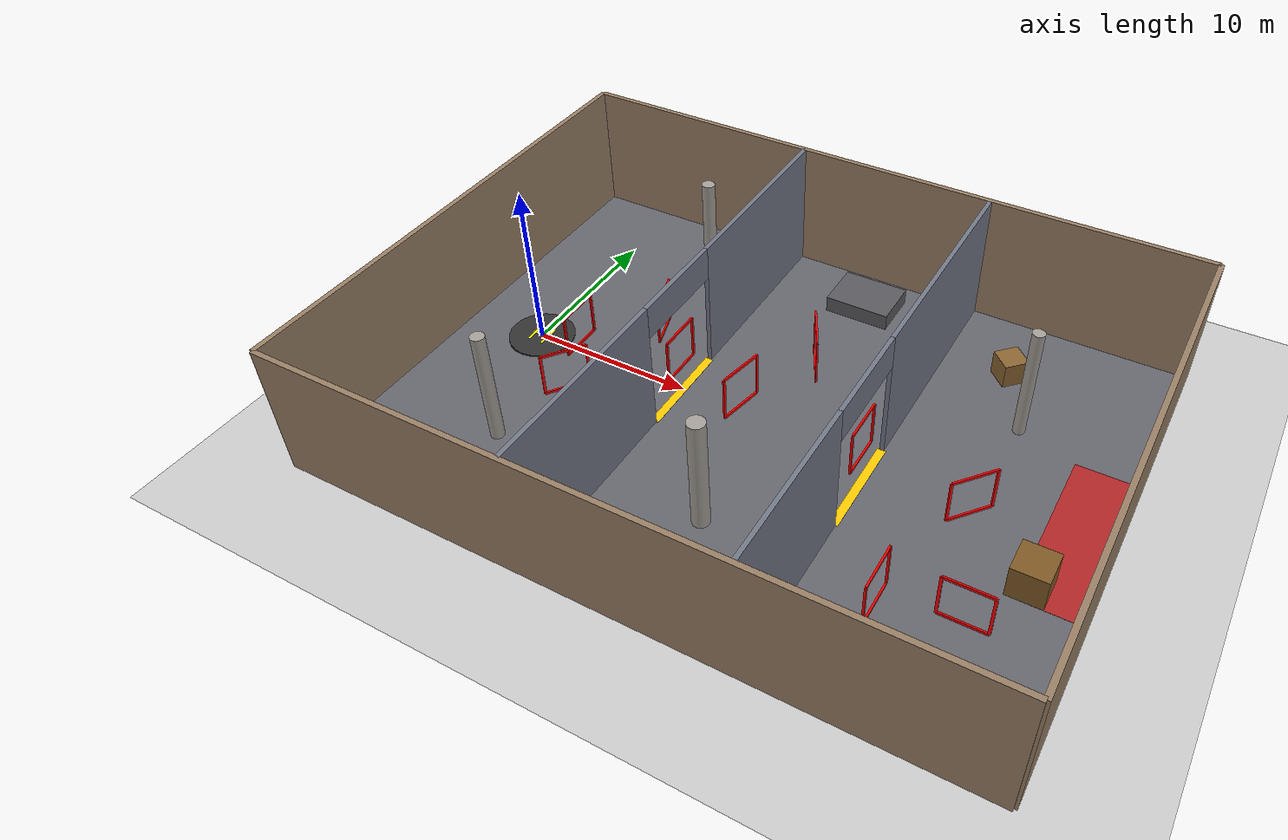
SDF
<sdf version="1.6">
 <world name="aerial_nav_world">
  <physics name="4ms" type="ignored">
   <max_step_size>0.004</max_step_size>
   <real_time_factor>1.0</real_time_factor>
   <real_time_update_rate>250</real_time_update_rate>
  </physics>
  <plugin filename="gz-sim-physics-system" name="gz::sim::systems::Physics"/>
  <plugin filename="gz-sim-scene-broadcaster-system" name="gz::sim::systems::SceneBroadcaster"/>
  <plugin filename="gz-sim-user-commands-system" name="gz::sim::systems::UserCommands"/>
  <plugin filename="gz-sim-sensors-system" name="gz::sim::systems::Sensors">
   <render_engine>ogre</render_engine>
  </plugin>
  <plugin filename="gz-sim-imu-system" name="gz::sim::systems::Imu"/>
  <plugin filename="gz-sim-contact-system" name="gz::sim::systems::Contact"/>
  <light type="directional" name="sun">
   <pose>0 0 20 0 0 0</pose>
   <diffuse>0.8 0.8 0.8 1</diffuse>
   <specular>0.2 0.2 0.2 1</specular>
   <attenuation>
    <range>1000</range>
    <constant>0.9</constant>
    <linear>0.01</linear>
    <quadratic>0.001</quadratic>
   </attenuation>
   <direction>-0.5 0.1 -0.9</direction>
  </light>
  <light name="fill_light" type="directional">
   <cast_shadows>false</cast_shadows>
   <pose>0 0 20 0 0 0</pose>
   <diffuse>0.6 0.6 0.6 1</diffuse>
   <specular>0.1 0.1 0.1 1</specular>
   <direction>0.3 0.4 -1.0</direction>
  </light>
  <light name="interior_light_1" type="point">
   <pose>10 5 7 0 0 0</pose>
   <diffuse>0.9 0.8 0.6 1</diffuse>
   <specular>0.1 0.1 0.1 1</specular>
   <attenuation>
    <range>30</range>
    <constant>0.3</constant>
    <linear>0.01</linear>
    <quadratic>0.001</quadratic>
   </attenuation>
  </light>
  <light name="interior_light_2" type="point">
   <pose>20 -2 7 0 0 0</pose>
   <diffuse>0.7 0.75 0.9 1</diffuse>
   <specular>0.1 0.1 0.1 1</specular>
   <attenuation>
    <range>30</range>
    <constant>0.3</constant>
    <linear>0.01</linear>
    <quadratic>0.001</quadratic>
   </attenuation>
  </light>
  <model name="ground_plane">
   <static>true</static>
   <link name="link">
    <collision name="collision">
     <geometry><plane><normal>0 0 1</normal><size>100 100</size></plane></geometry>
    </collision>
    <visual name="visual">
     <geometry><plane><normal>0 0 1</normal><size>100 100</size></plane></geometry>
     <material><ambient>0.8 0.8 0.8 1</ambient><diffuse>0.8 0.8 0.8 1</diffuse></material>
    </visual>
   </link>
  </model>
  <model name="arena_floor">
   <static>true</static>
   <pose>15 0 0.005 0 0 0</pose>
   <link name="floor_link">
    <visual name="visual">
     <geometry><box><size>40 30 0.01</size></box></geometry>
     <material>
      <ambient>0.35 0.35 0.38 1</ambient>
      <diffuse>0.4 0.4 0.43 1</diffuse>
      <specular>0.1 0.1 0.1 1</specular>
     </material>
    </visual>
   </link>
  </model>
  <model name="wall_south">
   <static>true</static>
   <pose>15 -15 4 0 0 0</pose>
   <link name="link">
    <visual name="visual">
     <geometry><box><size>40 0.3 8</size></box></geometry>
     <material>
      <ambient>0.55 0.45 0.35 1</ambient>
      <diffuse>0.6 0.5 0.4 1</diffuse>
      <specular>0.05 0.05 0.05 1</specular>
     </material>
    </visual>
    <collision name="collision"><geometry><box><size>40 0.3 8</size></box></geometry></collision>
   </link>
  </model>
  <model name="wall_north">
   <static>true</static>
   <pose>15 15 4 0 0 0</pose>
   <link name="link">
    <visual name="visual">
     <geometry><box><size>40 0.3 8</size></box></geometry>
     <material>
      <ambient>0.55 0.45 0.35 1</ambient>
      <diffuse>0.6 0.5 0.4 1</diffuse>
      <specular>0.05 0.05 0.05 1</specular>
     </material>
    </visual>
    <collision name="collision"><geometry><box><size>40 0.3 8</size></box></geometry></collision>
   </link>
  </model>
  <model name="wall_west">
   <static>true</static>
   <pose>-5 0 4 0 0 0</pose>
   <link name="link">
    <visual name="visual">
     <geometry><box><size>0.3 30 8</size></box></geometry>
     <material>
      <ambient>0.55 0.45 0.35 1</ambient>
      <diffuse>0.6 0.5 0.4 1</diffuse>
      <specular>0.05 0.05 0.05 1</specular>
     </material>
    </visual>
    <collision name="collision"><geometry><box><size>0.3 30 8</size></box></geometry></collision>
   </link>
  </model>
  <model name="wall_east">
   <static>true</static>
   <pose>35 0 4 0 0 0</pose>
   <link name="link">
    <visual name="visual">
     <geometry><box><size>0.3 30 8</size></box></geometry>
     <material>
      <ambient>0.55 0.45 0.35 1</ambient>
      <diffuse>0.6 0.5 0.4 1</diffuse>
      <specular>0.05 0.05 0.05 1</specular>
     </material>
    </visual>
    <collision name="collision"><geometry><box><size>0.3 30 8</size></box></geometry></collision>
   </link>
  </model>
  <model name="divider_a_south">
   <static>true</static>
   <pose>10 -9 4 0 0 0</pose>
   <link name="link">
    <visual name="visual">
     <geometry><box><size>0.25 12 8</size></box></geometry>
     <material>
      <ambient>0.4 0.42 0.48 1</ambient>
      <diffuse>0.45 0.47 0.53 1</diffuse>
      <specular>0.08 0.08 0.08 1</specular>
     </material>
    </visual>
    <collision name="collision"><geometry><box><size>0.25 12 8</size></box></geometry></collision>
   </link>
  </model>
  <model name="divider_a_north">
   <static>true</static>
   <pose>10 9 4 0 0 0</pose>
   <link name="link">
    <visual name="visual">
     <geometry><box><size>0.25 12 8</size></box></geometry>
     <material>
      <ambient>0.4 0.42 0.48 1</ambient>
      <diffuse>0.45 0.47 0.53 1</diffuse>
      <specular>0.08 0.08 0.08 1</specular>
     </material>
    </visual>
    <collision name="collision"><geometry><box><size>0.25 12 8</size></box></geometry></collision>
   </link>
  </model>
  <model name="divider_a_lintel">
   <static>true</static>
   <pose>10 0 7 0 0 0</pose>
   <link name="link">
    <visual name="visual">
     <geometry><box><size>0.25 6 2</size></box></geometry>
     <material>
      <ambient>0.4 0.42 0.48 1</ambient>
      <diffuse>0.45 0.47 0.53 1</diffuse>
      <specular>0.08 0.08 0.08 1</specular>
     </material>
    </visual>
    <collision name="collision"><geometry><box><size>0.25 6 2</size></box></geometry></collision>
   </link>
  </model>
  <model name="divider_b_south">
   <static>true</static>
   <pose>22 -10 4 0 0 0</pose>
   <link name="link">
    <visual name="visual">
     <geometry><box><size>0.25 10 8</size></box></geometry>
     <material>
      <ambient>0.4 0.42 0.48 1</ambient>
      <diffuse>0.45 0.47 0.53 1</diffuse>
      <specular>0.08 0.08 0.08 1</specular>
     </material>
    </visual>
    <collision name="collision"><geometry><box><size>0.25 10 8</size></box></geometry></collision>
   </link>
  </model>
  <model name="divider_b_north">
   <static>true</static>
   <pose>22 8 4 0 0 0</pose>
   <link name="link">
    <visual name="visual">
     <geometry><box><size>0.25 14 8</size></box></geometry>
     <material>
      <ambient>0.4 0.42 0.48 1</ambient>
      <diffuse>0.45 0.47 0.53 1</diffuse>
      <specular>0.08 0.08 0.08 1</specular>
     </material>
    </visual>
    <collision name="collision"><geometry><box><size>0.25 14 8</size></box></geometry></collision>
   </link>
  </model>
  <model name="divider_b_lintel">
   <static>true</static>
   <pose>22 -2 7 0 0 0</pose>
   <link name="link">
    <visual name="visual">
     <geometry><box><size>0.25 6 2</size></box></geometry>
     <material>
      <ambient>0.4 0.42 0.48 1</ambient>
      <diffuse>0.45 0.47 0.53 1</diffuse>
      <specular>0.08 0.08 0.08 1</specular>
     </material>
    </visual>
    <collision name="collision"><geometry><box><size>0.25 6 2</size></box></geometry></collision>
   </link>
  </model>
  <model name="pillar_01">
   <static>true</static>
   <pose>3 -8 3.5 0 0 0</pose>
   <link name="link">
    <visual name="visual">
     <geometry><cylinder><radius>0.4</radius><length>7</length></cylinder></geometry>
     <material>
      <ambient>0.6 0.58 0.55 1</ambient>
      <diffuse>0.65 0.63 0.6 1</diffuse>
      <specular>0.15 0.15 0.15 1</specular>
     </material>
    </visual>
    <collision name="collision">
     <geometry><cylinder><radius>0.4</radius><length>7</length></cylinder></geometry>
    </collision>
   </link>
  </model>
  <model name="pillar_02">
   <static>true</static>
   <pose>6 10 3.5 0 0 0</pose>
   <link name="link">
    <visual name="visual">
     <geometry><cylinder><radius>0.4</radius><length>7</length></cylinder></geometry>
     <material>
      <ambient>0.6 0.58 0.55 1</ambient>
      <diffuse>0.65 0.63 0.6 1</diffuse>
      <specular>0.15 0.15 0.15 1</specular>
     </material>
    </visual>
    <collision name="collision">
     <geometry><cylinder><radius>0.4</radius><length>7</length></cylinder></geometry>
    </collision>
   </link>
  </model>
  <model name="pillar_03">
   <static>true</static>
   <pose>16 -8 3.5 0 0 0</pose>
   <link name="link">
    <visual name="visual">
     <geometry><cylinder><radius>0.5</radius><length>7</length></cylinder></geometry>
     <material>
      <ambient>0.6 0.58 0.55 1</ambient>
      <diffuse>0.65 0.63 0.6 1</diffuse>
      <specular>0.15 0.15 0.15 1</specular>
     </material>
    </visual>
    <collision name="collision">
     <geometry><cylinder><radius>0.5</radius><length>7</length></cylinder></geometry>
    </collision>
   </link>
  </model>
  <model name="pillar_04">
   <static>true</static>
   <pose>28 6 3.5 0 0 0</pose>
   <link name="link">
    <visual name="visual">
     <geometry><cylinder><radius>0.35</radius><length>7</length></cylinder></geometry>
     <material>
      <ambient>0.6 0.58 0.55 1</ambient>
      <diffuse>0.65 0.63 0.6 1</diffuse>
      <specular>0.15 0.15 0.15 1</specular>
     </material>
    </visual>
    <collision name="collision">
     <geometry><cylinder><radius>0.35</radius><length>7</length></cylinder></geometry>
    </collision>
   </link>
  </model>
  <model name="crate_stack_01">
   <static>true</static>
   <pose>14 -12 0.75 0 0 0.2</pose>
   <link name="link">
    <visual name="visual">
     <geometry><box><size>1.5 1.5 1.5</size></box></geometry>
     <material>
      <ambient>0.5 0.35 0.15 1</ambient>
      <diffuse>0.55 0.4 0.2 1</diffuse>
      <specular>0.05 0.05 0.05 1</specular>
     </material>
    </visual>
    <collision name="collision"><geometry><box><size>1.5 1.5 1.5</size></box></geometry></collision>
   </link>
  </model>
  <model name="crate_stack_02">
   <static>true</static>
   <pose>14 -12 2.0 0 0 0.5</pose>
   <link name="link">
    <visual name="visual">
     <geometry><box><size>1.0 1.0 1.0</size></box></geometry>
     <material>
      <ambient>0.5 0.35 0.15 1</ambient>
      <diffuse>0.55 0.4 0.2 1</diffuse>
      <specular>0.05 0.05 0.05 1</specular>
     </material>
    </visual>
    <collision name="collision"><geometry><box><size>1.0 1.0 1.0</size></box></geometry></collision>
   </link>
  </model>
  <model name="crate_stack_03">
   <static>true</static>
   <pose>26 10 0.75 0 0 0.8</pose>
   <link name="link">
    <visual name="visual">
     <geometry><box><size>1.5 1.5 1.5</size></box></geometry>
     <material>
      <ambient>0.5 0.35 0.15 1</ambient>
      <diffuse>0.55 0.4 0.2 1</diffuse>
      <specular>0.05 0.05 0.05 1</specular>
     </material>
    </visual>
    <collision name="collision"><geometry><box><size>1.5 1.5 1.5</size></box></geometry></collision>
   </link>
  </model>
  <model name="crate_large">
   <static>true</static>
   <pose>32 -4 1.0 0 0 0</pose>
   <link name="link">
    <visual name="visual">
     <geometry><box><size>2.0 2.0 2.0</size></box></geometry>
     <material>
      <ambient>0.45 0.3 0.12 1</ambient>
      <diffuse>0.5 0.35 0.15 1</diffuse>
      <specular>0.05 0.05 0.05 1</specular>
     </material>
    </visual>
    <collision name="collision"><geometry><box><size>2.0 2.0 2.0</size></box></geometry></collision>
   </link>
  </model>
  <model name="landing_pad">
   <static>true</static>
   <pose>0 0 0.05 0 0 0</pose>
   <link name="pad_link">
    <visual name="visual">
     <geometry><cylinder><radius>2.0</radius><length>0.1</length></cylinder></geometry>
     <material>
      <ambient>0.15 0.15 0.15 1</ambient>
      <diffuse>0.2 0.2 0.2 1</diffuse>
      <specular>0.3 0.3 0.3 1</specular>
     </material>
    </visual>
    <collision name="collision">
     <geometry><cylinder><radius>2.0</radius><length>0.1</length></cylinder></geometry>
    </collision>
   </link>
  </model>
  <model name="landing_h_bar">
   <static>true</static>
   <pose>0 0 0.11 0 0 0</pose>
   <link name="link">
    <visual name="visual">
     <geometry><box><size>1.2 0.15 0.01</size></box></geometry>
     <material><ambient>0.9 0.9 0.0 1</ambient><diffuse>1.0 1.0 0.0 1</diffuse></material>
    </visual>
   </link>
  </model>
  <model name="landing_h_left">
   <static>true</static>
   <pose>-0.45 0 0.11 0 0 0</pose>
   <link name="link">
    <visual name="visual">
     <geometry><box><size>0.15 1.4 0.01</size></box></geometry>
     <material><ambient>0.9 0.9 0.0 1</ambient><diffuse>1.0 1.0 0.0 1</diffuse></material>
    </visual>
   </link>
  </model>
  <model name="landing_h_right">
   <static>true</static>
   <pose>0.45 0 0.11 0 0 0</pose>
   <link name="link">
    <visual name="visual">
     <geometry><box><size>0.15 1.4 0.01</size></box></geometry>
     <material><ambient>0.9 0.9 0.0 1</ambient><diffuse>1.0 1.0 0.0 1</diffuse></material>
    </visual>
   </link>
  </model>
  <model name="platform_01">
   <static>true</static>
   <pose>16 12 0.5 0 0 0</pose>
   <link name="link">
    <visual name="visual">
     <geometry><box><size>4 3 1.0</size></box></geometry>
     <material>
      <ambient>0.3 0.3 0.32 1</ambient>
      <diffuse>0.35 0.35 0.37 1</diffuse>
      <specular>0.1 0.1 0.1 1</specular>
     </material>
    </visual>
    <collision name="collision"><geometry><box><size>4 3 1.0</size></box></geometry></collision>
   </link>
  </model>
  <model name="floor_stripe_a">
   <static>true</static>
   <pose>10 0 0.015 0 0 0</pose>
   <link name="link">
    <visual name="visual">
     <geometry><box><size>0.5 6 0.01</size></box></geometry>
     <material><ambient>0.9 0.7 0.0 1</ambient><diffuse>1.0 0.8 0.0 1</diffuse></material>
    </visual>
   </link>
  </model>
  <model name="floor_stripe_b">
   <static>true</static>
   <pose>22 -2 0.015 0 0 0</pose>
   <link name="link">
    <visual name="visual">
     <geometry><box><size>0.5 6 0.01</size></box></geometry>
     <material><ambient>0.9 0.7 0.0 1</ambient><diffuse>1.0 0.8 0.0 1</diffuse></material>
    </visual>
   </link>
  </model>
  <model name="danger_zone">
   <static>true</static>
   <pose>33 0 0.015 0 0 0</pose>
   <link name="link">
    <visual name="visual">
     <geometry><box><size>3 10 0.01</size></box></geometry>
     <material><ambient>0.6 0.1 0.1 1</ambient><diffuse>0.7 0.15 0.15 1</diffuse></material>
    </visual>
   </link>
  </model>
  <model name="gate_01">
   <static>true</static>
   <pose>3 0 2.0 0 0 0</pose>
   <link name="left">
    <pose>0 1.3 0 0 0 0</pose>
    <visual name="v">
     <geometry><box><size>0.1 0.15 2.6</size></box></geometry>
     <material><ambient>1 0 0 1</ambient><diffuse>1 0 0 1</diffuse></material>
    </visual>
    <collision name="c"><geometry><box><size>0.1 0.15 2.6</size></box></geometry></collision>
   </link>
   <link name="right">
    <pose>0 -1.3 0 0 0 0</pose>
    <visual name="v">
     <geometry><box><size>0.1 0.15 2.6</size></box></geometry>
     <material><ambient>1 0 0 1</ambient><diffuse>1 0 0 1</diffuse></material>
    </visual>
    <collision name="c"><geometry><box><size>0.1 0.15 2.6</size></box></geometry></collision>
   </link>
   <link name="top">
    <pose>0 0 1.3 0 0 0</pose>
    <visual name="v">
     <geometry><box><size>0.1 2.6 0.15</size></box></geometry>
     <material><ambient>1 0 0 1</ambient><diffuse>1 0 0 1</diffuse></material>
    </visual>
    <collision name="c"><geometry><box><size>0.1 2.6 0.15</size></box></geometry></collision>
   </link>
   <link name="bottom">
    <pose>0 0 -1.3 0 0 0</pose>
    <visual name="v">
     <geometry><box><size>0.1 2.6 0.15</size></box></geometry>
     <material><ambient>1 0 0 1</ambient><diffuse>1 0 0 1</diffuse></material>
    </visual>
    <collision name="c"><geometry><box><size>0.1 2.6 0.15</size></box></geometry></collision>
   </link>
  </model>
  <model name="gate_02">
   <static>true</static>
   <pose>7 3 2.5 0 0 0.3</pose>
   <link name="left">
    <pose>0 1.3 0 0 0 0</pose>
    <visual name="v">
     <geometry><box><size>0.1 0.15 2.6</size></box></geometry>
     <material><ambient>1 0 0 1</ambient><diffuse>1 0 0 1</diffuse></material>
    </visual>
    <collision name="c"><geometry><box><size>0.1 0.15 2.6</size></box></geometry></collision>
   </link>
   <link name="right">
    <pose>0 -1.3 0 0 0 0</pose>
    <visual name="v">
     <geometry><box><size>0.1 0.15 2.6</size></box></geometry>
     <material><ambient>1 0 0 1</ambient><diffuse>1 0 0 1</diffuse></material>
    </visual>
    <collision name="c"><geometry><box><size>0.1 0.15 2.6</size></box></geometry></collision>
   </link>
   <link name="top">
    <pose>0 0 1.3 0 0 0</pose>
    <visual name="v">
     <geometry><box><size>0.1 2.6 0.15</size></box></geometry>
     <material><ambient>1 0 0 1</ambient><diffuse>1 0 0 1</diffuse></material>
    </visual>
    <collision name="c"><geometry><box><size>0.1 2.6 0.15</size></box></geometry></collision>
   </link>
   <link name="bottom">
    <pose>0 0 -1.3 0 0 0</pose>
    <visual name="v">
     <geometry><box><size>0.1 2.6 0.15</size></box></geometry>
     <material><ambient>1 0 0 1</ambient><diffuse>1 0 0 1</diffuse></material>
    </visual>
    <collision name="c"><geometry><box><size>0.1 2.6 0.15</size></box></geometry></collision>
   </link>
  </model>
  <model name="gate_03">
   <static>true</static>
   <pose>10 0 3.0 0 0 0</pose>
   <link name="left">
    <pose>0 1.3 0 0 0 0</pose>
    <visual name="v">
     <geometry><box><size>0.1 0.15 2.6</size></box></geometry>
     <material><ambient>1 0 0 1</ambient><diffuse>1 0 0 1</diffuse></material>
    </visual>
    <collision name="c"><geometry><box><size>0.1 0.15 2.6</size></box></geometry></collision>
   </link>
   <link name="right">
    <pose>0 -1.3 0 0 0 0</pose>
    <visual name="v">
     <geometry><box><size>0.1 0.15 2.6</size></box></geometry>
     <material><ambient>1 0 0 1</ambient><diffuse>1 0 0 1</diffuse></material>
    </visual>
    <collision name="c"><geometry><box><size>0.1 0.15 2.6</size></box></geometry></collision>
   </link>
   <link name="top">
    <pose>0 0 1.3 0 0 0</pose>
    <visual name="v">
     <geometry><box><size>0.1 2.6 0.15</size></box></geometry>
     <material><ambient>1 0 0 1</ambient><diffuse>1 0 0 1</diffuse></material>
    </visual>
    <collision name="c"><geometry><box><size>0.1 2.6 0.15</size></box></geometry></collision>
   </link>
   <link name="bottom">
    <pose>0 0 -1.3 0 0 0</pose>
    <visual name="v">
     <geometry><box><size>0.1 2.6 0.15</size></box></geometry>
     <material><ambient>1 0 0 1</ambient><diffuse>1 0 0 1</diffuse></material>
    </visual>
    <collision name="c"><geometry><box><size>0.1 2.6 0.15</size></box></geometry></collision>
   </link>
  </model>
  <model name="gate_04">
   <static>true</static>
   <pose>15 -2 4.0 0 0 -0.2</pose>
   <link name="left">
    <pose>0 1.3 0 0 0 0</pose>
    <visual name="v">
     <geometry><box><size>0.1 0.15 2.6</size></box></geometry>
     <material><ambient>1 0 0 1</ambient><diffuse>1 0 0 1</diffuse></material>
    </visual>
    <collision name="c"><geometry><box><size>0.1 0.15 2.6</size></box></geometry></collision>
   </link>
   <link name="right">
    <pose>0 -1.3 0 0 0 0</pose>
    <visual name="v">
     <geometry><box><size>0.1 0.15 2.6</size></box></geometry>
     <material><ambient>1 0 0 1</ambient><diffuse>1 0 0 1</diffuse></material>
    </visual>
    <collision name="c"><geometry><box><size>0.1 0.15 2.6</size></box></geometry></collision>
   </link>
   <link name="top">
    <pose>0 0 1.3 0 0 0</pose>
    <visual name="v">
     <geometry><box><size>0.1 2.6 0.15</size></box></geometry>
     <material><ambient>1 0 0 1</ambient><diffuse>1 0 0 1</diffuse></material>
    </visual>
    <collision name="c"><geometry><box><size>0.1 2.6 0.15</size></box></geometry></collision>
   </link>
   <link name="bottom">
    <pose>0 0 -1.3 0 0 0</pose>
    <visual name="v">
     <geometry><box><size>0.1 2.6 0.15</size></box></geometry>
     <material><ambient>1 0 0 1</ambient><diffuse>1 0 0 1</diffuse></material>
    </visual>
    <collision name="c"><geometry><box><size>0.1 2.6 0.15</size></box></geometry></collision>
   </link>
  </model>
  <model name="gate_05">
   <static>true</static>
   <pose>17.48 1.71 5.0 0 0 0.5</pose>
   <link name="left">
    <pose>0 1.3 0 0 0 0</pose>
    <visual name="v">
     <geometry><box><size>0.1 0.15 2.6</size></box></geometry>
     <material><ambient>1 0 0 1</ambient><diffuse>1 0 0 1</diffuse></material>
    </visual>
    <collision name="c"><geometry><box><size>0.1 0.15 2.6</size></box></geometry></collision>
   </link>
   <link name="right">
    <pose>0 -1.3 0 0 0 0</pose>
    <visual name="v">
     <geometry><box><size>0.1 0.15 2.6</size></box></geometry>
     <material><ambient>1 0 0 1</ambient><diffuse>1 0 0 1</diffuse></material>
    </visual>
    <collision name="c"><geometry><box><size>0.1 0.15 2.6</size></box></geometry></collision>
   </link>
   <link name="top">
    <pose>0 0 1.3 0 0 0</pose>
    <visual name="v">
     <geometry><box><size>0.1 2.6 0.15</size></box></geometry>
     <material><ambient>1 0 0 1</ambient><diffuse>1 0 0 1</diffuse></material>
    </visual>
    <collision name="c"><geometry><box><size>0.1 2.6 0.15</size></box></geometry></collision>
   </link>
   <link name="bottom">
    <pose>0 0 -1.3 0 0 0</pose>
    <visual name="v">
     <geometry><box><size>0.1 2.6 0.15</size></box></geometry>
     <material><ambient>1 0 0 1</ambient><diffuse>1 0 0 1</diffuse></material>
    </visual>
    <collision name="c"><geometry><box><size>0.1 2.6 0.15</size></box></geometry></collision>
   </link>
  </model>
  <model name="gate_06">
   <static>true</static>
   <pose>22 -2 3.5 0 0 0</pose>
   <link name="left">
    <pose>0 1.3 0 0 0 0</pose>
    <visual name="v">
     <geometry><box><size>0.1 0.15 2.6</size></box></geometry>
     <material><ambient>1 0 0 1</ambient><diffuse>1 0 0 1</diffuse></material>
    </visual>
    <collision name="c"><geometry><box><size>0.1 0.15 2.6</size></box></geometry></collision>
   </link>
   <link name="right">
    <pose>0 -1.3 0 0 0 0</pose>
    <visual name="v">
     <geometry><box><size>0.1 0.15 2.6</size></box></geometry>
     <material><ambient>1 0 0 1</ambient><diffuse>1 0 0 1</diffuse></material>
    </visual>
    <collision name="c"><geometry><box><size>0.1 0.15 2.6</size></box></geometry></collision>
   </link>
   <link name="top">
    <pose>0 0 1.3 0 0 0</pose>
    <visual name="v">
     <geometry><box><size>0.1 2.6 0.15</size></box></geometry>
     <material><ambient>1 0 0 1</ambient><diffuse>1 0 0 1</diffuse></material>
    </visual>
    <collision name="c"><geometry><box><size>0.1 2.6 0.15</size></box></geometry></collision>
   </link>
   <link name="bottom">
    <pose>0 0 -1.3 0 0 0</pose>
    <visual name="v">
     <geometry><box><size>0.1 2.6 0.15</size></box></geometry>
     <material><ambient>1 0 0 1</ambient><diffuse>1 0 0 1</diffuse></material>
    </visual>
    <collision name="c"><geometry><box><size>0.1 2.6 0.15</size></box></geometry></collision>
   </link>
  </model>
  <model name="gate_07">
   <static>true</static>
   <pose>28 -2 2.5 0 0 -0.7</pose>
   <link name="left">
    <pose>0 1.3 0 0 0 0</pose>
    <visual name="v">
     <geometry><box><size>0.1 0.15 2.6</size></box></geometry>
     <material><ambient>1 0 0 1</ambient><diffuse>1 0 0 1</diffuse></material>
    </visual>
    <collision name="c"><geometry><box><size>0.1 0.15 2.6</size></box></geometry></collision>
   </link>
   <link name="right">
    <pose>0 -1.3 0 0 0 0</pose>
    <visual name="v">
     <geometry><box><size>0.1 0.15 2.6</size></box></geometry>
     <material><ambient>1 0 0 1</ambient><diffuse>1 0 0 1</diffuse></material>
    </visual>
    <collision name="c"><geometry><box><size>0.1 0.15 2.6</size></box></geometry></collision>
   </link>
   <link name="top">
    <pose>0 0 1.3 0 0 0</pose>
    <visual name="v">
     <geometry><box><size>0.1 2.6 0.15</size></box></geometry>
     <material><ambient>1 0 0 1</ambient><diffuse>1 0 0 1</diffuse></material>
    </visual>
    <collision name="c"><geometry><box><size>0.1 2.6 0.15</size></box></geometry></collision>
   </link>
   <link name="bottom">
    <pose>0 0 -1.3 0 0 0</pose>
    <visual name="v">
     <geometry><box><size>0.1 2.6 0.15</size></box></geometry>
     <material><ambient>1 0 0 1</ambient><diffuse>1 0 0 1</diffuse></material>
    </visual>
    <collision name="c"><geometry><box><size>0.1 2.6 0.15</size></box></geometry></collision>
   </link>
  </model>
  <model name="gate_08">
   <static>true</static>
   <pose>30 -8 2.0 0 0 -1.57</pose>
   <link name="left">
    <pose>0 1.3 0 0 0 0</pose>
    <visual name="v">
     <geometry><box><size>0.1 0.15 2.6</size></box></geometry>
     <material><ambient>1 0 0 1</ambient><diffuse>1 0 0 1</diffuse></material>
    </visual>
    <collision name="c"><geometry><box><size>0.1 0.15 2.6</size></box></geometry></collision>
   </link>
   <link name="right">
    <pose>0 -1.3 0 0 0 0</pose>
    <visual name="v">
     <geometry><box><size>0.1 0.15 2.6</size></box></geometry>
     <material><ambient>1 0 0 1</ambient><diffuse>1 0 0 1</diffuse></material>
    </visual>
    <collision name="c"><geometry><box><size>0.1 0.15 2.6</size></box></geometry></collision>
   </link>
   <link name="top">
    <pose>0 0 1.3 0 0 0</pose>
    <visual name="v">
     <geometry><box><size>0.1 2.6 0.15</size></box></geometry>
     <material><ambient>1 0 0 1</ambient><diffuse>1 0 0 1</diffuse></material>
    </visual>
    <collision name="c"><geometry><box><size>0.1 2.6 0.15</size></box></geometry></collision>
   </link>
   <link name="bottom">
    <pose>0 0 -1.3 0 0 0</pose>
    <visual name="v">
     <geometry><box><size>0.1 2.6 0.15</size></box></geometry>
     <material><ambient>1 0 0 1</ambient><diffuse>1 0 0 1</diffuse></material>
    </visual>
    <collision name="c"><geometry><box><size>0.1 2.6 0.15</size></box></geometry></collision>
   </link>
  </model>
  <model name="gate_09">
   <static>true</static>
   <pose>26.38 -10 3.5 0 0 3.14</pose>
   <link name="left">
    <pose>0 1.3 0 0 0 0</pose>
    <visual name="v">
     <geometry><box><size>0.1 0.15 2.6</size></box></geometry>
     <material><ambient>1 0 0 1</ambient><diffuse>1 0 0 1</diffuse></material>
    </visual>
    <collision name="c"><geometry><box><size>0.1 0.15 2.6</size></box></geometry></collision>
   </link>
   <link name="right">
    <pose>0 -1.3 0 0 0 0</pose>
    <visual name="v">
     <geometry><box><size>0.1 0.15 2.6</size></box></geometry>
     <material><ambient>1 0 0 1</ambient><diffuse>1 0 0 1</diffuse></material>
    </visual>
    <collision name="c"><geometry><box><size>0.1 0.15 2.6</size></box></geometry></collision>
   </link>
   <link name="top">
    <pose>0 0 1.3 0 0 0</pose>
    <visual name="v">
     <geometry><box><size>0.1 2.6 0.15</size></box></geometry>
     <material><ambient>1 0 0 1</ambient><diffuse>1 0 0 1</diffuse></material>
    </visual>
    <collision name="c"><geometry><box><size>0.1 2.6 0.15</size></box></geometry></collision>
   </link>
   <link name="bottom">
    <pose>0 0 -1.3 0 0 0</pose>
    <visual name="v">
     <geometry><box><size>0.1 2.6 0.15</size></box></geometry>
     <material><ambient>1 0 0 1</ambient><diffuse>1 0 0 1</diffuse></material>
    </visual>
    <collision name="c"><geometry><box><size>0.1 2.6 0.15</size></box></geometry></collision>
   </link>
  </model>
  <model name="gate_10">
   <static>true</static>
   <pose>5 -4 2.5 0 0 2.5</pose>
   <link name="left">
    <pose>0 1.3 0 0 0 0</pose>
    <visual name="v">
     <geometry><box><size>0.1 0.15 2.6</size></box></geometry>
     <material><ambient>1 0 0 1</ambient><diffuse>1 0 0 1</diffuse></material>
    </visual>
    <collision name="c"><geometry><box><size>0.1 0.15 2.6</size></box></geometry></collision>
   </link>
   <link name="right">
    <pose>0 -1.3 0 0 0 0</pose>
    <visual name="v">
     <geometry><box><size>0.1 0.15 2.6</size></box></geometry>
     <material><ambient>1 0 0 1</ambient><diffuse>1 0 0 1</diffuse></material>
    </visual>
    <collision name="c"><geometry><box><size>0.1 0.15 2.6</size></box></geometry></collision>
   </link>
   <link name="top">
    <pose>0 0 1.3 0 0 0</pose>
    <visual name="v">
     <geometry><box><size>0.1 2.6 0.15</size></box></geometry>
     <material><ambient>1 0 0 1</ambient><diffuse>1 0 0 1</diffuse></material>
    </visual>
    <collision name="c"><geometry><box><size>0.1 2.6 0.15</size></box></geometry></collision>
   </link>
   <link name="bottom">
    <pose>0 0 -1.3 0 0 0</pose>
    <visual name="v">
     <geometry><box><size>0.1 2.6 0.15</size></box></geometry>
     <material><ambient>1 0 0 1</ambient><diffuse>1 0 0 1</diffuse></material>
    </visual>
    <collision name="c"><geometry><box><size>0.1 2.6 0.15</size></box></geometry></collision>
   </link>
  </model>
 </world>
</sdf>
